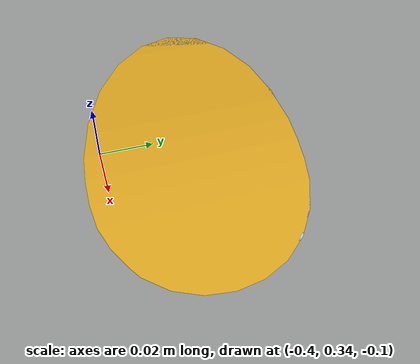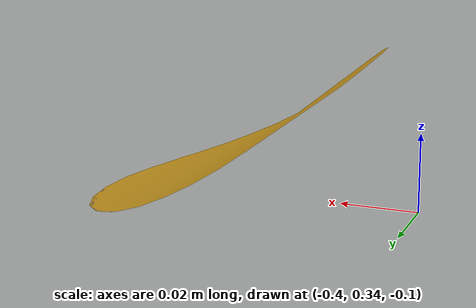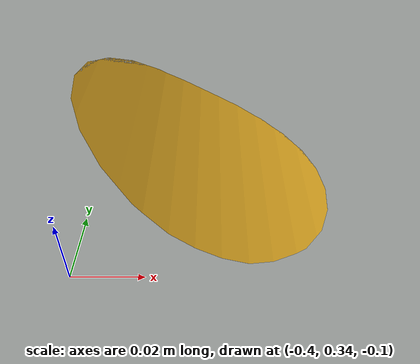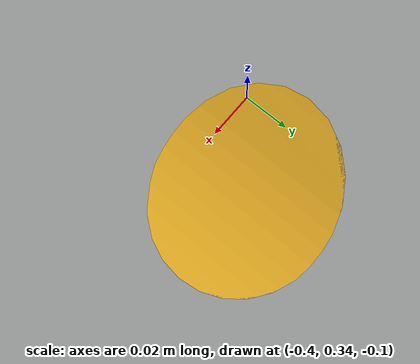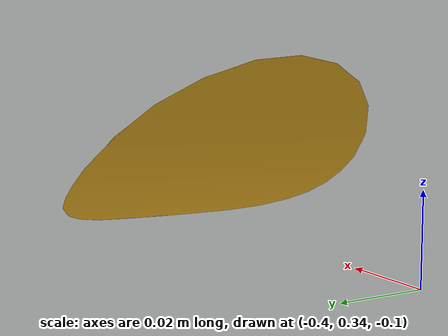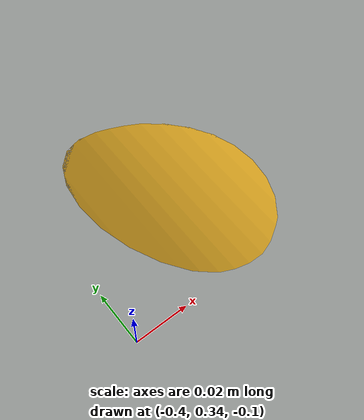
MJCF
<mujoco model="original-52">
  <default>
    <default class="visual">
      <geom group="2" type="mesh" contype="0" conaffinity="0"/>
    </default>
    <default class="collision">
      <geom group="3" type="mesh"/>
    </default>
  </default>
  <asset>
    <material name="material_0_0" specular="0.06666666666666667" shininess="0.03" rgba="0.8 0.8 0.8 1"/>
    <material name="material_1_0" specular="0.06666666666666667" shininess="0.03" rgba="0.8549019607843137 0.6431372549019608 0.12549019607843137 1"/>
    <mesh file="original-52_0.obj"/>
    <mesh file="original-52_1.obj"/>
  </asset>
  <worldbody>
    <body name="original-52">
      <geom mesh="original-52_0" material="material_1_0" class="visual"/>
      <geom mesh="original-52_1" material="material_0_0" class="visual"/>
      <geom mesh="original-52_0" class="collision"/>
      <geom mesh="original-52_1" class="collision"/>
    </body>
  </worldbody>
</mujoco>
